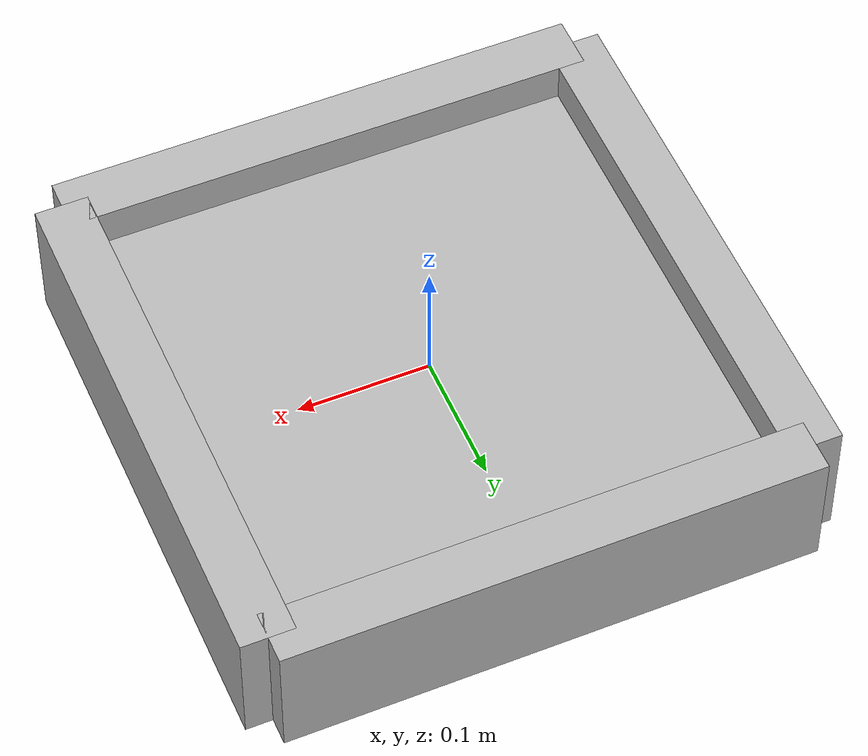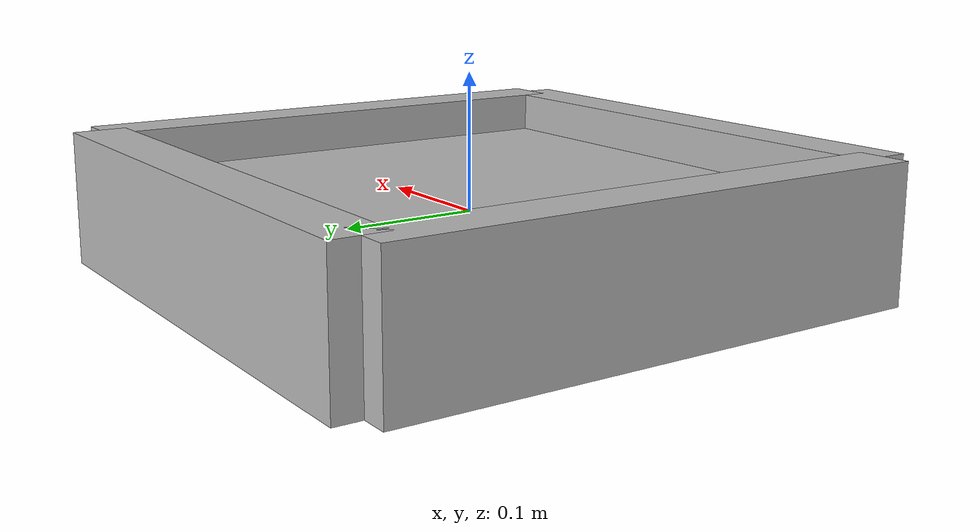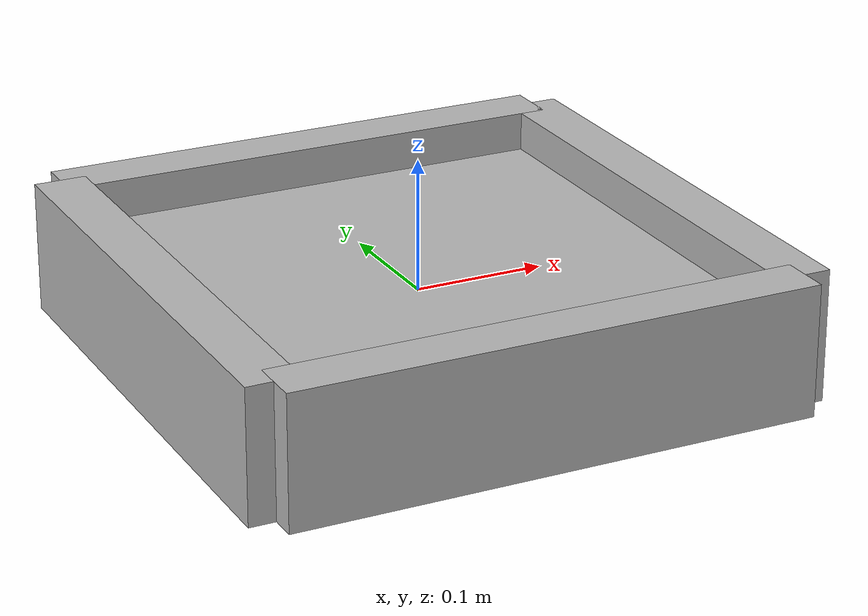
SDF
<?xml version="1.0" ?>
<sdf version="1.6">
  <model name="simple_bin">
    <!-- Static bin since it will not move -->
    <static>true</static>

    <!-- Bin bottom -->
    <link name="bin_bottom">
      <pose>0 0 0.01 0 0 0</pose> <!-- Slightly raised to avoid collision with the ground -->
      <collision name="collision_bottom">
        <geometry>
          <box>
            <size>0.4 0.4 0.02</size> <!-- 0.4m x 0.4m x 0.02m bottom -->
          </box>
        </geometry>
      </collision>
      <visual name="visual_bottom">
        <geometry>
          <box>
            <size>0.4 0.4 0.02</size>
          </box>
        </geometry>
      </visual>
    </link>

    <!-- Bin front wall -->
    <link name="bin_front">
      <pose>0 0.2 0 0 0 0</pose> <!-- Positioned forward, adjusted for no gap -->
      <collision name="collision_front">
        <geometry>
          <box>
            <size>0.4 0.04 0.1</size> <!-- 0.4m x 0.04m x 0.1m front wall -->
          </box>
        </geometry>
      </collision>
      <visual name="visual_front">
        <geometry>
          <box>
            <size>0.4 0.04 0.1</size>
          </box>
        </geometry>
      </visual>
    </link>

    <!-- Bin back wall -->
    <link name="bin_back">
      <pose>0 -0.2 0 0 0 0</pose> <!-- Positioned backward, adjusted for no gap -->
      <collision name="collision_back">
        <geometry>
          <box>
            <size>0.4 0.04 0.1</size> <!-- 0.4m x 0.04m x 0.1m back wall -->
          </box>
        </geometry>
      </collision>
      <visual name="visual_back">
        <geometry>
          <box>
            <size>0.4 0.04 0.1</size>
          </box>
        </geometry>
      </visual>
    </link>

    <!-- Bin left wall -->
    <link name="bin_left">
      <pose>-0.2 0 0 0 0 0</pose> <!-- Positioned left, adjusted for no gap -->
      <collision name="collision_left">
        <geometry>
          <box>
            <size>0.04 0.4 0.1</size> <!-- 0.04m x 0.4m x 0.1m left wall -->
          </box>
        </geometry>
      </collision>
      <visual name="visual_left">
        <geometry>
          <box>
            <size>0.04 0.4 0.1</size>
          </box>
        </geometry>
      </visual>
    </link>

    <!-- Bin right wall -->
    <link name="bin_right">
      <pose>0.2 0 0 0 0 0</pose> <!-- Positioned right, adjusted for no gap -->
      <collision name="collision_right">
        <geometry>
          <box>
            <size>0.04 0.4 0.1</size> <!-- 0.04m x 0.4m x 0.1m right wall -->
          </box>
        </geometry>
      </collision>
      <visual name="visual_right">
        <geometry>
          <box>
            <size>0.04 0.4 0.1</size>
          </box>
        </geometry>
      </visual>
    </link>

  </model>
</sdf>
